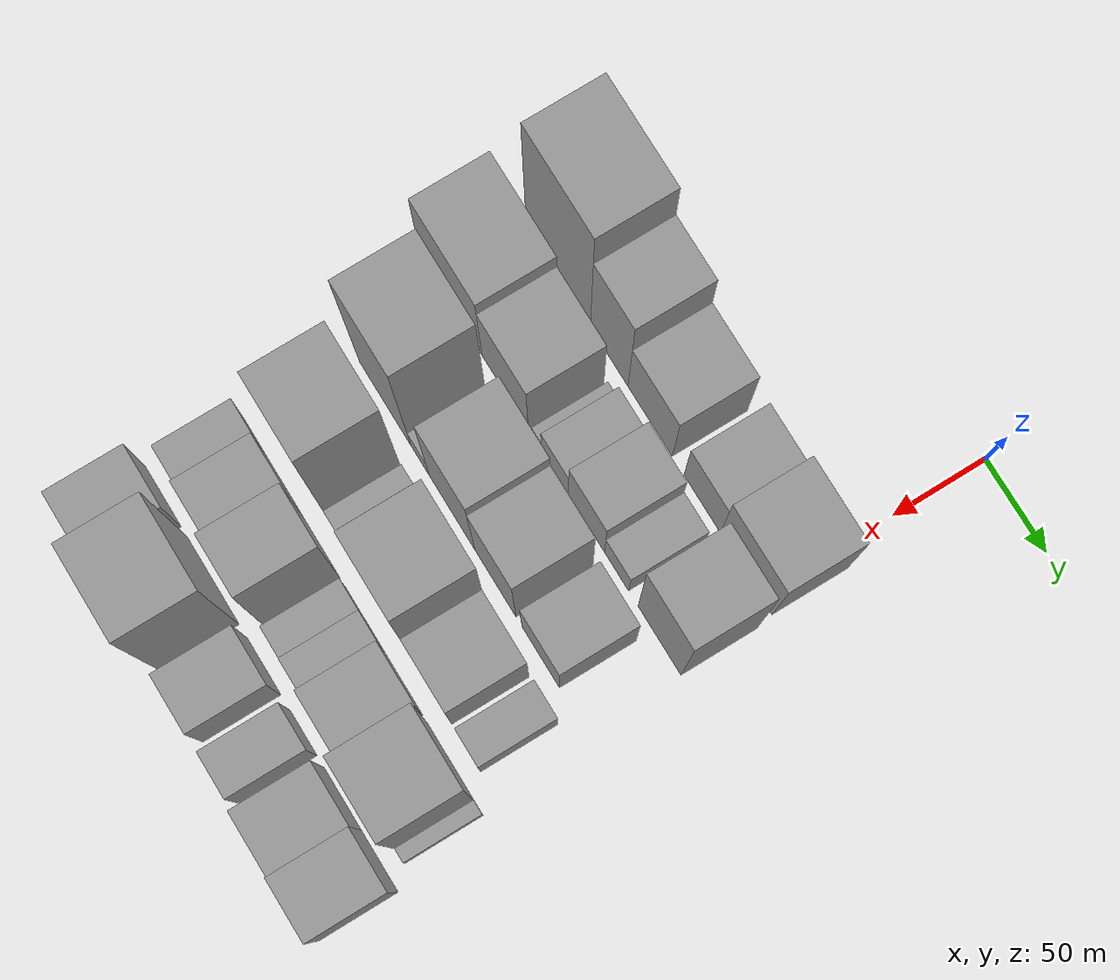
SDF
<sdf version="1.6">
 <world name="default">
  <model name="building_19">
   <static>1</static>
   <pose>100.0000 -173.6003 0 0.000000 0.000000 0.000000</pose>
   <link name="link">
    <pose>0 0 70.50 0 0 0</pose>
    <collision name="collision"><geometry><box><size>40.0000 56.0913 141.0000</size></box></geometry></collision>
    <visual name="visual">
     <cast_shadows>0</cast_shadows>
     <geometry><box><size>40.0000 56.0913 141.0000</size></box></geometry>
     <material>
      <script>
       <uri>model://grey_wall/materials/scripts</uri>
       <uri>model://grey_wall/materials/textures</uri>
       <name>vrc/grey_wall</name>
      </script>
     </material>
    </visual>
   </link>
  </model>
  <model name="building_20">
   <static>1</static>
   <pose>100.0000 -129.2822 0 0.000000 0.000000 0.000000</pose>
   <link name="link">
    <pose>0 0 52.50 0 0 0</pose>
    <collision name="collision"><geometry><box><size>40.0000 32.5449 105.0000</size></box></geometry></collision>
    <visual name="visual">
     <cast_shadows>0</cast_shadows>
     <geometry><box><size>40.0000 32.5449 105.0000</size></box></geometry>
     <material>
      <script>
       <uri>model://grey_wall/materials/scripts</uri>
       <uri>model://grey_wall/materials/textures</uri>
       <name>vrc/grey_wall</name>
      </script>
     </material>
    </visual>
   </link>
  </model>
  <model name="building_21">
   <static>1</static>
   <pose>100.0000 -93.9875 0 0.000000 0.000000 0.000000</pose>
   <link name="link">
    <pose>0 0 34.50 0 0 0</pose>
    <collision name="collision"><geometry><box><size>40.0000 38.0445 69.0000</size></box></geometry></collision>
    <visual name="visual">
     <cast_shadows>0</cast_shadows>
     <geometry><box><size>40.0000 38.0445 69.0000</size></box></geometry>
     <material>
      <script>
       <uri>model://grey_wall/materials/scripts</uri>
       <uri>model://grey_wall/materials/textures</uri>
       <name>vrc/grey_wall</name>
      </script>
     </material>
    </visual>
   </link>
  </model>
  <model name="building_22">
   <static>1</static>
   <pose>100.0000 -49.4875 0 0.000000 0.000000 0.000000</pose>
   <link name="link">
    <pose>0 0 28.50 0 0 0</pose>
    <collision name="collision"><geometry><box><size>40.0000 30.9556 57.0000</size></box></geometry></collision>
    <visual name="visual">
     <cast_shadows>0</cast_shadows>
     <geometry><box><size>40.0000 30.9556 57.0000</size></box></geometry>
     <material>
      <script>
       <uri>model://grey_wall/materials/scripts</uri>
       <uri>model://grey_wall/materials/textures</uri>
       <name>vrc/grey_wall</name>
      </script>
     </material>
    </visual>
   </link>
  </model>
  <model name="building_23">
   <static>1</static>
   <pose>100.0000 -12.2931 0 0.000000 0.000000 0.000000</pose>
   <link name="link">
    <pose>0 0 37.50 0 0 0</pose>
    <collision name="collision"><geometry><box><size>40.0000 43.4332 75.0000</size></box></geometry></collision>
    <visual name="visual">
     <cast_shadows>0</cast_shadows>
     <geometry><box><size>40.0000 43.4332 75.0000</size></box></geometry>
     <material>
      <script>
       <uri>model://grey_wall/materials/scripts</uri>
       <uri>model://grey_wall/materials/textures</uri>
       <name>vrc/grey_wall</name>
      </script>
     </material>
    </visual>
   </link>
  </model>
  <model name="building_64">
   <static>1</static>
   <pose>149.0000 -186.5730 0 0.000000 0.000000 0.000000</pose>
   <link name="link">
    <pose>0 0 45.00 0 0 0</pose>
    <collision name="collision"><geometry><box><size>40.0000 53.9124 90.0000</size></box></geometry></collision>
    <visual name="visual">
     <cast_shadows>0</cast_shadows>
     <geometry><box><size>40.0000 53.9124 90.0000</size></box></geometry>
     <material>
      <script>
       <uri>model://grey_wall/materials/scripts</uri>
       <uri>model://grey_wall/materials/textures</uri>
       <name>vrc/grey_wall</name>
      </script>
     </material>
    </visual>
   </link>
  </model>
  <model name="building_65">
   <static>1</static>
   <pose>149.0000 -139.4178 0 0.000000 0.000000 0.000000</pose>
   <link name="link">
    <pose>0 0 37.50 0 0 0</pose>
    <collision name="collision"><geometry><box><size>40.0000 40.3981 75.0000</size></box></geometry></collision>
    <visual name="visual">
     <cast_shadows>0</cast_shadows>
     <geometry><box><size>40.0000 40.3981 75.0000</size></box></geometry>
     <material>
      <script>
       <uri>model://grey_wall/materials/scripts</uri>
       <uri>model://grey_wall/materials/textures</uri>
       <name>vrc/grey_wall</name>
      </script>
     </material>
    </visual>
   </link>
  </model>
  <model name="building_66">
   <static>1</static>
   <pose>149.0000 -112.0971 0 0.000000 0.000000 0.000000</pose>
   <link name="link">
    <pose>0 0 9.00 0 0 0</pose>
    <collision name="collision"><geometry><box><size>40.0000 8.2434 18.0000</size></box></geometry></collision>
    <visual name="visual">
     <cast_shadows>0</cast_shadows>
     <geometry><box><size>40.0000 8.2434 18.0000</size></box></geometry>
     <material>
      <script>
       <uri>model://grey_wall/materials/scripts</uri>
       <uri>model://grey_wall/materials/textures</uri>
       <name>vrc/grey_wall</name>
      </script>
     </material>
    </visual>
   </link>
  </model>
  <model name="building_67">
   <static>1</static>
   <pose>149.0000 -96.3185 0 0.000000 0.000000 0.000000</pose>
   <link name="link">
    <pose>0 0 19.50 0 0 0</pose>
    <collision name="collision"><geometry><box><size>40.0000 23.3137 39.0000</size></box></geometry></collision>
    <visual name="visual">
     <cast_shadows>0</cast_shadows>
     <geometry><box><size>40.0000 23.3137 39.0000</size></box></geometry>
     <material>
      <script>
       <uri>model://grey_wall/materials/scripts</uri>
       <uri>model://grey_wall/materials/textures</uri>
       <name>vrc/grey_wall</name>
      </script>
     </material>
    </visual>
   </link>
  </model>
  <model name="building_68">
   <static>1</static>
   <pose>149.0000 -69.2419 0 0.000000 0.000000 0.000000</pose>
   <link name="link">
    <pose>0 0 30.00 0 0 0</pose>
    <collision name="collision"><geometry><box><size>40.0000 30.8396 60.0000</size></box></geometry></collision>
    <visual name="visual">
     <cast_shadows>0</cast_shadows>
     <geometry><box><size>40.0000 30.8396 60.0000</size></box></geometry>
     <material>
      <script>
       <uri>model://grey_wall/materials/scripts</uri>
       <uri>model://grey_wall/materials/textures</uri>
       <name>vrc/grey_wall</name>
      </script>
     </material>
    </visual>
   </link>
  </model>
  <model name="building_69">
   <static>1</static>
   <pose>149.0000 -43.5027 0 0.000000 0.000000 0.000000</pose>
   <link name="link">
    <pose>0 0 18.00 0 0 0</pose>
    <collision name="collision"><geometry><box><size>40.0000 20.6387 36.0000</size></box></geometry></collision>
    <visual name="visual">
     <cast_shadows>0</cast_shadows>
     <geometry><box><size>40.0000 20.6387 36.0000</size></box></geometry>
     <material>
      <script>
       <uri>model://grey_wall/materials/scripts</uri>
       <uri>model://grey_wall/materials/textures</uri>
       <name>vrc/grey_wall</name>
      </script>
     </material>
    </visual>
   </link>
  </model>
  <model name="building_70">
   <static>1</static>
   <pose>149.0000 -7.0303 0 0.000000 0.000000 0.000000</pose>
   <link name="link">
    <pose>0 0 52.50 0 0 0</pose>
    <collision name="collision"><geometry><box><size>40.0000 36.3060 105.0000</size></box></geometry></collision>
    <visual name="visual">
     <cast_shadows>0</cast_shadows>
     <geometry><box><size>40.0000 36.3060 105.0000</size></box></geometry>
     <material>
      <script>
       <uri>model://grey_wall/materials/scripts</uri>
       <uri>model://grey_wall/materials/textures</uri>
       <name>vrc/grey_wall</name>
      </script>
     </material>
    </visual>
   </link>
  </model>
  <model name="building_112">
   <static>1</static>
   <pose>198.0000 -163.2301 0 0.000000 0.000000 0.000000</pose>
   <link name="link">
    <pose>0 0 70.50 0 0 0</pose>
    <collision name="collision"><geometry><box><size>40.0000 45.7080 141.0000</size></box></geometry></collision>
    <visual name="visual">
     <cast_shadows>0</cast_shadows>
     <geometry><box><size>40.0000 45.7080 141.0000</size></box></geometry>
     <material>
      <script>
       <uri>model://grey_wall/materials/scripts</uri>
       <uri>model://grey_wall/materials/textures</uri>
       <name>vrc/grey_wall</name>
      </script>
     </material>
    </visual>
   </link>
  </model>
  <model name="building_113">
   <static>1</static>
   <pose>198.0000 -132.3354 0 0.000000 0.000000 0.000000</pose>
   <link name="link">
    <pose>0 0 15.00 0 0 0</pose>
    <collision name="collision"><geometry><box><size>40.0000 16.0814 30.0000</size></box></geometry></collision>
    <visual name="visual">
     <cast_shadows>0</cast_shadows>
     <geometry><box><size>40.0000 16.0814 30.0000</size></box></geometry>
     <material>
      <script>
       <uri>model://grey_wall/materials/scripts</uri>
       <uri>model://grey_wall/materials/textures</uri>
       <name>vrc/grey_wall</name>
      </script>
     </material>
    </visual>
   </link>
  </model>
  <model name="building_114">
   <static>1</static>
   <pose>198.0000 -104.4581 0 0.000000 0.000000 0.000000</pose>
   <link name="link">
    <pose>0 0 55.50 0 0 0</pose>
    <collision name="collision"><geometry><box><size>40.0000 39.6733 111.0000</size></box></geometry></collision>
    <visual name="visual">
     <cast_shadows>0</cast_shadows>
     <geometry><box><size>40.0000 39.6733 111.0000</size></box></geometry>
     <material>
      <script>
       <uri>model://grey_wall/materials/scripts</uri>
       <uri>model://grey_wall/materials/textures</uri>
       <name>vrc/grey_wall</name>
      </script>
     </material>
    </visual>
   </link>
  </model>
  <model name="building_115">
   <static>1</static>
   <pose>198.0000 -67.0036 0 0.000000 0.000000 0.000000</pose>
   <link name="link">
    <pose>0 0 48.00 0 0 0</pose>
    <collision name="collision"><geometry><box><size>40.0000 35.2358 96.0000</size></box></geometry></collision>
    <visual name="visual">
     <cast_shadows>0</cast_shadows>
     <geometry><box><size>40.0000 35.2358 96.0000</size></box></geometry>
     <material>
      <script>
       <uri>model://grey_wall/materials/scripts</uri>
       <uri>model://grey_wall/materials/textures</uri>
       <name>vrc/grey_wall</name>
      </script>
     </material>
    </visual>
   </link>
  </model>
  <model name="building_116">
   <static>1</static>
   <pose>198.0000 -28.3401 0 0.000000 0.000000 0.000000</pose>
   <link name="link">
    <pose>0 0 30.00 0 0 0</pose>
    <collision name="collision"><geometry><box><size>40.0000 32.0911 60.0000</size></box></geometry></collision>
    <visual name="visual">
     <cast_shadows>0</cast_shadows>
     <geometry><box><size>40.0000 32.0911 60.0000</size></box></geometry>
     <material>
      <script>
       <uri>model://grey_wall/materials/scripts</uri>
       <uri>model://grey_wall/materials/textures</uri>
       <name>vrc/grey_wall</name>
      </script>
     </material>
    </visual>
   </link>
  </model>
  <model name="building_169">
   <static>1</static>
   <pose>247.0000 -187.2966 0 0.000000 0.000000 0.000000</pose>
   <link name="link">
    <pose>0 0 18.00 0 0 0</pose>
    <collision name="collision"><geometry><box><size>40.0000 20.7839 36.0000</size></box></geometry></collision>
    <visual name="visual">
     <cast_shadows>0</cast_shadows>
     <geometry><box><size>40.0000 20.7839 36.0000</size></box></geometry>
     <material>
      <script>
       <uri>model://grey_wall/materials/scripts</uri>
       <uri>model://grey_wall/materials/textures</uri>
       <name>vrc/grey_wall</name>
      </script>
     </material>
    </visual>
   </link>
  </model>
  <model name="building_170">
   <static>1</static>
   <pose>247.0000 -155.5110 0 0.000000 0.000000 0.000000</pose>
   <link name="link">
    <pose>0 0 63.00 0 0 0</pose>
    <collision name="collision"><geometry><box><size>40.0000 42.7872 126.0000</size></box></geometry></collision>
    <visual name="visual">
     <cast_shadows>0</cast_shadows>
     <geometry><box><size>40.0000 42.7872 126.0000</size></box></geometry>
     <material>
      <script>
       <uri>model://grey_wall/materials/scripts</uri>
       <uri>model://grey_wall/materials/textures</uri>
       <name>vrc/grey_wall</name>
      </script>
     </material>
    </visual>
   </link>
  </model>
  <model name="building_171">
   <static>1</static>
   <pose>247.0000 -125.1564 0 0.000000 0.000000 0.000000</pose>
   <link name="link">
    <pose>0 0 12.00 0 0 0</pose>
    <collision name="collision"><geometry><box><size>40.0000 11.9221 24.0000</size></box></geometry></collision>
    <visual name="visual">
     <cast_shadows>0</cast_shadows>
     <geometry><box><size>40.0000 11.9221 24.0000</size></box></geometry>
     <material>
      <script>
       <uri>model://grey_wall/materials/scripts</uri>
       <uri>model://grey_wall/materials/textures</uri>
       <name>vrc/grey_wall</name>
      </script>
     </material>
    </visual>
   </link>
  </model>
  <model name="building_172">
   <static>1</static>
   <pose>247.0000 -110.4530 0 0.000000 0.000000 0.000000</pose>
   <link name="link">
    <pose>0 0 16.50 0 0 0</pose>
    <collision name="collision"><geometry><box><size>40.0000 17.4846 33.0000</size></box></geometry></collision>
    <visual name="visual">
     <cast_shadows>0</cast_shadows>
     <geometry><box><size>40.0000 17.4846 33.0000</size></box></geometry>
     <material>
      <script>
       <uri>model://grey_wall/materials/scripts</uri>
       <uri>model://grey_wall/materials/textures</uri>
       <name>vrc/grey_wall</name>
      </script>
     </material>
    </visual>
   </link>
  </model>
  <model name="building_173">
   <static>1</static>
   <pose>247.0000 -80.7673 0 0.000000 0.000000 0.000000</pose>
   <link name="link">
    <pose>0 0 63.00 0 0 0</pose>
    <collision name="collision"><geometry><box><size>40.0000 41.8869 126.0000</size></box></geometry></collision>
    <visual name="visual">
     <cast_shadows>0</cast_shadows>
     <geometry><box><size>40.0000 41.8869 126.0000</size></box></geometry>
     <material>
      <script>
       <uri>model://grey_wall/materials/scripts</uri>
       <uri>model://grey_wall/materials/textures</uri>
       <name>vrc/grey_wall</name>
      </script>
     </material>
    </visual>
   </link>
  </model>
  <model name="building_174">
   <static>1</static>
   <pose>247.0000 -41.6172 0 0.000000 0.000000 0.000000</pose>
   <link name="link">
    <pose>0 0 31.50 0 0 0</pose>
    <collision name="collision"><geometry><box><size>40.0000 36.4134 63.0000</size></box></geometry></collision>
    <visual name="visual">
     <cast_shadows>0</cast_shadows>
     <geometry><box><size>40.0000 36.4134 63.0000</size></box></geometry>
     <material>
      <script>
       <uri>model://grey_wall/materials/scripts</uri>
       <uri>model://grey_wall/materials/textures</uri>
       <name>vrc/grey_wall</name>
      </script>
     </material>
    </visual>
   </link>
  </model>
  <model name="building_175">
   <static>1</static>
   <pose>247.0000 -8.5970 0 0.000000 0.000000 0.000000</pose>
   <link name="link">
    <pose>0 0 18.00 0 0 0</pose>
    <collision name="collision"><geometry><box><size>40.0000 19.6269 36.0000</size></box></geometry></collision>
    <visual name="visual">
     <cast_shadows>0</cast_shadows>
     <geometry><box><size>40.0000 19.6269 36.0000</size></box></geometry>
     <material>
      <script>
       <uri>model://grey_wall/materials/scripts</uri>
       <uri>model://grey_wall/materials/textures</uri>
       <name>vrc/grey_wall</name>
      </script>
     </material>
    </visual>
   </link>
  </model>
  <model name="building_219">
   <static>1</static>
   <pose>296.0000 -181.0284 0 0.000000 0.000000 0.000000</pose>
   <link name="link">
    <pose>0 0 19.50 0 0 0</pose>
    <collision name="collision"><geometry><box><size>40.0000 22.0682 39.0000</size></box></geometry></collision>
    <visual name="visual">
     <cast_shadows>0</cast_shadows>
     <geometry><box><size>40.0000 22.0682 39.0000</size></box></geometry>
     <material>
      <script>
       <uri>model://grey_wall/materials/scripts</uri>
       <uri>model://grey_wall/materials/textures</uri>
       <name>vrc/grey_wall</name>
      </script>
     </material>
    </visual>
   </link>
  </model>
  <model name="building_220">
   <static>1</static>
   <pose>296.0000 -153.1517 0 0.000000 0.000000 0.000000</pose>
   <link name="link">
    <pose>0 0 28.50 0 0 0</pose>
    <collision name="collision"><geometry><box><size>40.0000 33.6852 57.0000</size></box></geometry></collision>
    <visual name="visual">
     <cast_shadows>0</cast_shadows>
     <geometry><box><size>40.0000 33.6852 57.0000</size></box></geometry>
     <material>
      <script>
       <uri>model://grey_wall/materials/scripts</uri>
       <uri>model://grey_wall/materials/textures</uri>
       <name>vrc/grey_wall</name>
      </script>
     </material>
    </visual>
   </link>
  </model>
  <model name="building_221">
   <static>1</static>
   <pose>296.0000 -120.8029 0 0.000000 0.000000 0.000000</pose>
   <link name="link">
    <pose>0 0 48.00 0 0 0</pose>
    <collision name="collision"><geometry><box><size>40.0000 31.0125 96.0000</size></box></geometry></collision>
    <visual name="visual">
     <cast_shadows>0</cast_shadows>
     <geometry><box><size>40.0000 31.0125 96.0000</size></box></geometry>
     <material>
      <script>
       <uri>model://grey_wall/materials/scripts</uri>
       <uri>model://grey_wall/materials/textures</uri>
       <name>vrc/grey_wall</name>
      </script>
     </material>
    </visual>
   </link>
  </model>
  <model name="building_222">
   <static>1</static>
   <pose>296.0000 -92.0000 0 0.000000 0.000000 0.000000</pose>
   <link name="link">
    <pose>0 0 16.50 0 0 0</pose>
    <collision name="collision"><geometry><box><size>40.0000 16.5932 33.0000</size></box></geometry></collision>
    <visual name="visual">
     <cast_shadows>0</cast_shadows>
     <geometry><box><size>40.0000 16.5932 33.0000</size></box></geometry>
     <material>
      <script>
       <uri>model://grey_wall/materials/scripts</uri>
       <uri>model://grey_wall/materials/textures</uri>
       <name>vrc/grey_wall</name>
      </script>
     </material>
    </visual>
   </link>
  </model>
  <model name="building_223">
   <static>1</static>
   <pose>296.0000 -74.6004 0 0.000000 0.000000 0.000000</pose>
   <link name="link">
    <pose>0 0 18.00 0 0 0</pose>
    <collision name="collision"><geometry><box><size>40.0000 18.2060 36.0000</size></box></geometry></collision>
    <visual name="visual">
     <cast_shadows>0</cast_shadows>
     <geometry><box><size>40.0000 18.2060 36.0000</size></box></geometry>
     <material>
      <script>
       <uri>model://grey_wall/materials/scripts</uri>
       <uri>model://grey_wall/materials/textures</uri>
       <name>vrc/grey_wall</name>
      </script>
     </material>
    </visual>
   </link>
  </model>
  <model name="building_224">
   <static>1</static>
   <pose>296.0000 -49.5214 0 0.000000 0.000000 0.000000</pose>
   <link name="link">
    <pose>0 0 28.50 0 0 0</pose>
    <collision name="collision"><geometry><box><size>40.0000 31.9521 57.0000</size></box></geometry></collision>
    <visual name="visual">
     <cast_shadows>0</cast_shadows>
     <geometry><box><size>40.0000 31.9521 57.0000</size></box></geometry>
     <material>
      <script>
       <uri>model://grey_wall/materials/scripts</uri>
       <uri>model://grey_wall/materials/textures</uri>
       <name>vrc/grey_wall</name>
      </script>
     </material>
    </visual>
   </link>
  </model>
  <model name="building_225">
   <static>1</static>
   <pose>296.0000 -9.3671 0 0.000000 0.000000 0.000000</pose>
   <link name="link">
    <pose>0 0 57.00 0 0 0</pose>
    <collision name="collision"><geometry><box><size>40.0000 40.3563 114.0000</size></box></geometry></collision>
    <visual name="visual">
     <cast_shadows>0</cast_shadows>
     <geometry><box><size>40.0000 40.3563 114.0000</size></box></geometry>
     <material>
      <script>
       <uri>model://grey_wall/materials/scripts</uri>
       <uri>model://grey_wall/materials/textures</uri>
       <name>vrc/grey_wall</name>
      </script>
     </material>
    </visual>
   </link>
  </model>
  <model name="building_226">
   <static>1</static>
   <pose>296.0000 14.4890 0 0.000000 0.000000 0.000000</pose>
   <link name="link">
    <pose>0 0 7.50 0 0 0</pose>
    <collision name="collision"><geometry><box><size>40.0000 7.3560 15.0000</size></box></geometry></collision>
    <visual name="visual">
     <cast_shadows>0</cast_shadows>
     <geometry><box><size>40.0000 7.3560 15.0000</size></box></geometry>
     <material>
      <script>
       <uri>model://grey_wall/materials/scripts</uri>
       <uri>model://grey_wall/materials/textures</uri>
       <name>vrc/grey_wall</name>
      </script>
     </material>
    </visual>
   </link>
  </model>
  <model name="building_270">
   <static>1</static>
   <pose>345.0000 -178.9084 0 0.000000 0.000000 0.000000</pose>
   <link name="link">
    <pose>0 0 27.00 0 0 0</pose>
    <collision name="collision"><geometry><box><size>40.0000 32.2968 54.0000</size></box></geometry></collision>
    <visual name="visual">
     <cast_shadows>0</cast_shadows>
     <geometry><box><size>40.0000 32.2968 54.0000</size></box></geometry>
     <material>
      <script>
       <uri>model://grey_wall/materials/scripts</uri>
       <uri>model://grey_wall/materials/textures</uri>
       <name>vrc/grey_wall</name>
      </script>
     </material>
    </visual>
   </link>
  </model>
  <model name="building_271">
   <static>1</static>
   <pose>345.0000 -134.4039 0 0.000000 0.000000 0.000000</pose>
   <link name="link">
    <pose>0 0 58.50 0 0 0</pose>
    <collision name="collision"><geometry><box><size>40.0000 46.7121 117.0000</size></box></geometry></collision>
    <visual name="visual">
     <cast_shadows>0</cast_shadows>
     <geometry><box><size>40.0000 46.7121 117.0000</size></box></geometry>
     <material>
      <script>
       <uri>model://grey_wall/materials/scripts</uri>
       <uri>model://grey_wall/materials/textures</uri>
       <name>vrc/grey_wall</name>
      </script>
     </material>
    </visual>
   </link>
  </model>
  <model name="building_272">
   <static>1</static>
   <pose>345.0000 -89.1384 0 0.000000 0.000000 0.000000</pose>
   <link name="link">
    <pose>0 0 25.50 0 0 0</pose>
    <collision name="collision"><geometry><box><size>40.0000 29.8189 51.0000</size></box></geometry></collision>
    <visual name="visual">
     <cast_shadows>0</cast_shadows>
     <geometry><box><size>40.0000 29.8189 51.0000</size></box></geometry>
     <material>
      <script>
       <uri>model://grey_wall/materials/scripts</uri>
       <uri>model://grey_wall/materials/textures</uri>
       <name>vrc/grey_wall</name>
      </script>
     </material>
    </visual>
   </link>
  </model>
  <model name="building_273">
   <static>1</static>
   <pose>345.0000 -54.4281 0 0.000000 0.000000 0.000000</pose>
   <link name="link">
    <pose>0 0 22.50 0 0 0</pose>
    <collision name="collision"><geometry><box><size>40.0000 23.6016 45.0000</size></box></geometry></collision>
    <visual name="visual">
     <cast_shadows>0</cast_shadows>
     <geometry><box><size>40.0000 23.6016 45.0000</size></box></geometry>
     <material>
      <script>
       <uri>model://grey_wall/materials/scripts</uri>
       <uri>model://grey_wall/materials/textures</uri>
       <name>vrc/grey_wall</name>
      </script>
     </material>
    </visual>
   </link>
  </model>
  <model name="building_274">
   <static>1</static>
   <pose>345.0000 -20.5172 0 0.000000 0.000000 0.000000</pose>
   <link name="link">
    <pose>0 0 28.50 0 0 0</pose>
    <collision name="collision"><geometry><box><size>40.0000 32.2202 57.0000</size></box></geometry></collision>
    <visual name="visual">
     <cast_shadows>0</cast_shadows>
     <geometry><box><size>40.0000 32.2202 57.0000</size></box></geometry>
     <material>
      <script>
       <uri>model://grey_wall/materials/scripts</uri>
       <uri>model://grey_wall/materials/textures</uri>
       <name>vrc/grey_wall</name>
      </script>
     </material>
    </visual>
   </link>
  </model>
  <model name="building_275">
   <static>1</static>
   <pose>345.0000 11.4172 0 0.000000 0.000000 0.000000</pose>
   <link name="link">
    <pose>0 0 31.50 0 0 0</pose>
    <collision name="collision"><geometry><box><size>40.0000 31.6486 63.0000</size></box></geometry></collision>
    <visual name="visual">
     <cast_shadows>0</cast_shadows>
     <geometry><box><size>40.0000 31.6486 63.0000</size></box></geometry>
     <material>
      <script>
       <uri>model://grey_wall/materials/scripts</uri>
       <uri>model://grey_wall/materials/textures</uri>
       <name>vrc/grey_wall</name>
      </script>
     </material>
    </visual>
   </link>
  </model>
 </world>
</sdf>
